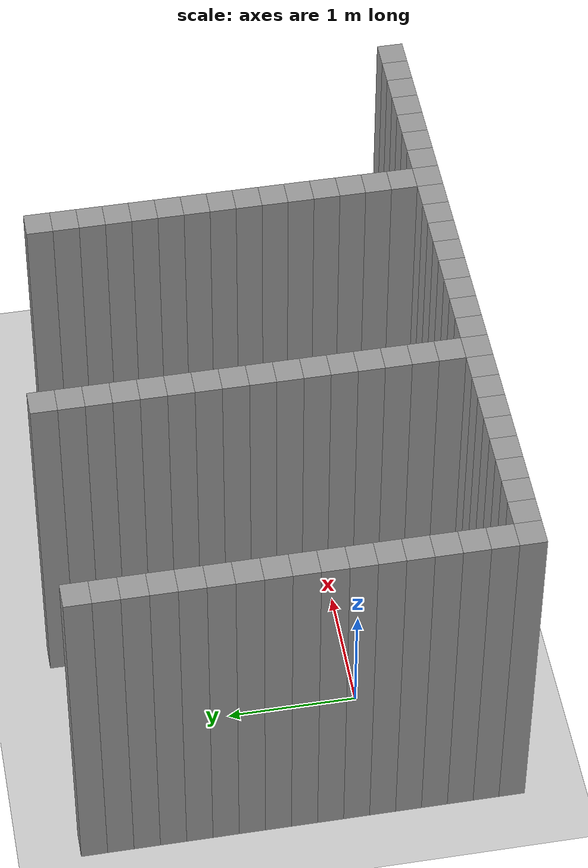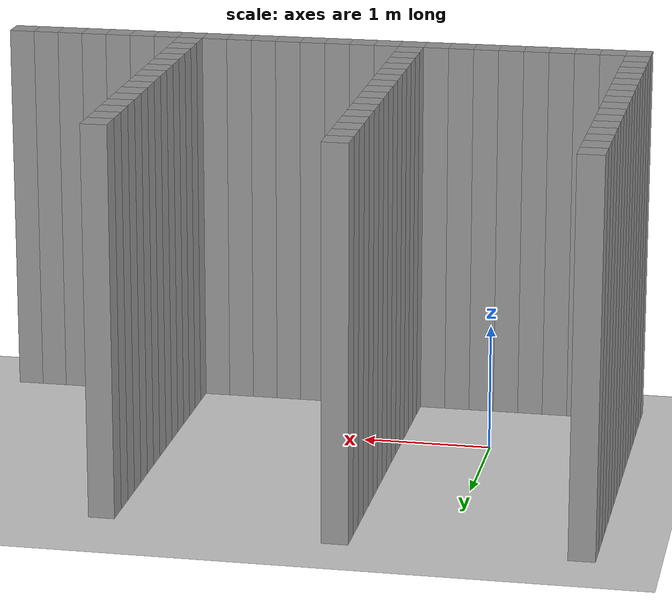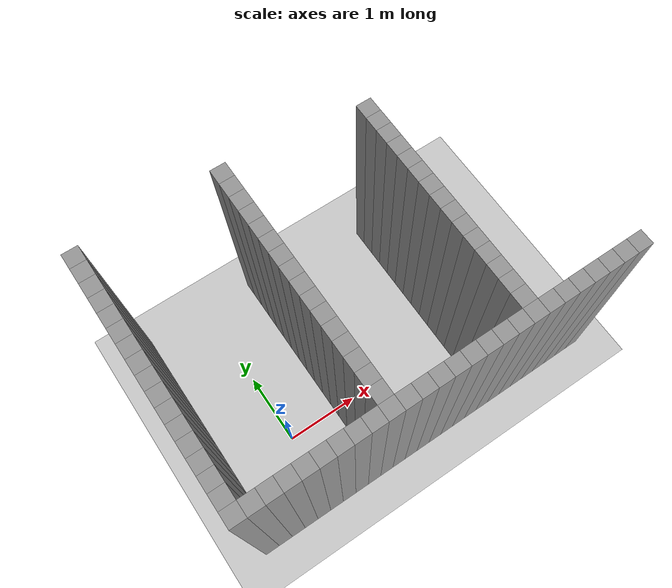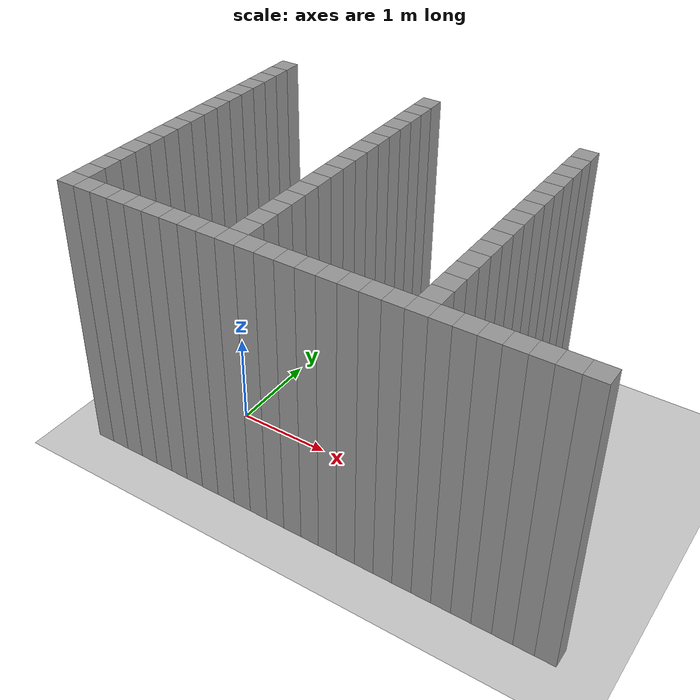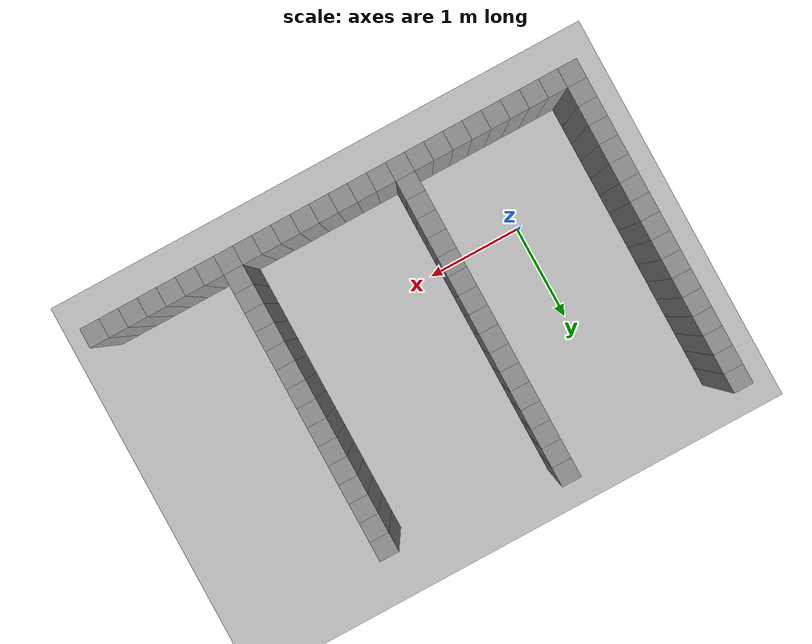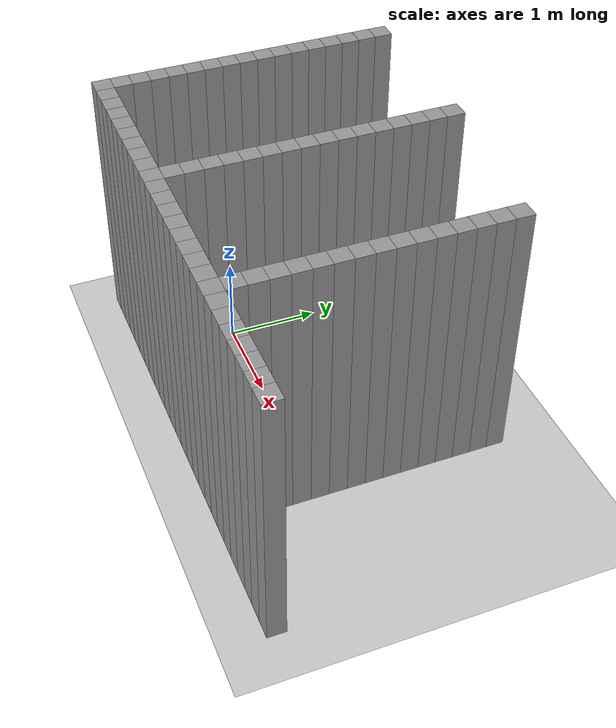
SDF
<sdf version="1.7">
 <world name="default">
  <model name="ground_plane">
   <static>1</static>
   <link name="link">
    <collision name="collision">
     <geometry><plane><normal>0 0 1</normal><size>100 100</size></plane></geometry>
     <surface>
      <contact><collide_bitmask>65535</collide_bitmask></contact>
      <friction><ode><mu>100</mu><mu2>50</mu2></ode></friction>
     </surface>
    </collision>
    <visual name="visual">
     <cast_shadows>0</cast_shadows>
     <geometry><plane><normal>0 0 1</normal><size>100 100</size></plane></geometry>
     <material>
      <script><uri>file://media/materials/scripts/gazebo.material</uri><name>Gazebo/Grey</name></script>
     </material>
    </visual>
   </link>
  </model>
  <model name="image1">
   <pose>-1 -1 0 0 -0 0</pose>
   <link name="Wall_0">
    <collision name="Wall_0_Collision">
     <geometry><box><size>0.2 0.2 3</size></box></geometry>
     <pose>0 0 1.5 0 -0 0</pose>
    </collision>
    <visual name="Wall_0_Visual">
     <pose>0 0 1.5 0 -0 0</pose>
     <geometry><box><size>0.2 0.2 3</size></box></geometry>
     <material>
      <script><uri>file://media/materials/scripts/gazebo.material</uri><name>Gazebo/Grey</name></script>
      <ambient>1 1 1 1</ambient>
     </material>
     <meta><layer>0</layer></meta>
    </visual>
   </link>
   <link name="Wall_1">
    <collision name="Wall_1_Collision">
     <geometry><box><size>0.2 0.2 3</size></box></geometry>
     <pose>0 0 1.5 0 -0 0</pose>
    </collision>
    <visual name="Wall_1_Visual">
     <pose>0 0 1.5 0 -0 0</pose>
     <geometry><box><size>0.2 0.2 3</size></box></geometry>
     <material>
      <script><uri>file://media/materials/scripts/gazebo.material</uri><name>Gazebo/Grey</name></script>
      <ambient>1 1 1 1</ambient>
     </material>
     <meta><layer>0</layer></meta>
    </visual>
    <pose>0.0 0.2 0 0 -0 0</pose>
   </link>
   <link name="Wall_2">
    <collision name="Wall_2_Collision">
     <geometry><box><size>0.2 0.2 3</size></box></geometry>
     <pose>0 0 1.5 0 -0 0</pose>
    </collision>
    <visual name="Wall_2_Visual">
     <pose>0 0 1.5 0 -0 0</pose>
     <geometry><box><size>0.2 0.2 3</size></box></geometry>
     <material>
      <script><uri>file://media/materials/scripts/gazebo.material</uri><name>Gazebo/Grey</name></script>
      <ambient>1 1 1 1</ambient>
     </material>
     <meta><layer>0</layer></meta>
    </visual>
    <pose>0.0 0.4 0 0 -0 0</pose>
   </link>
   <link name="Wall_3">
    <collision name="Wall_3_Collision">
     <geometry><box><size>0.2 0.2 3</size></box></geometry>
     <pose>0 0 1.5 0 -0 0</pose>
    </collision>
    <visual name="Wall_3_Visual">
     <pose>0 0 1.5 0 -0 0</pose>
     <geometry><box><size>0.2 0.2 3</size></box></geometry>
     <material>
      <script><uri>file://media/materials/scripts/gazebo.material</uri><name>Gazebo/Grey</name></script>
      <ambient>1 1 1 1</ambient>
     </material>
     <meta><layer>0</layer></meta>
    </visual>
    <pose>0.0 0.6000000000000001 0 0 -0 0</pose>
   </link>
   <link name="Wall_4">
    <collision name="Wall_4_Collision">
     <geometry><box><size>0.2 0.2 3</size></box></geometry>
     <pose>0 0 1.5 0 -0 0</pose>
    </collision>
    <visual name="Wall_4_Visual">
     <pose>0 0 1.5 0 -0 0</pose>
     <geometry><box><size>0.2 0.2 3</size></box></geometry>
     <material>
      <script><uri>file://media/materials/scripts/gazebo.material</uri><name>Gazebo/Grey</name></script>
      <ambient>1 1 1 1</ambient>
     </material>
     <meta><layer>0</layer></meta>
    </visual>
    <pose>0.0 0.8 0 0 -0 0</pose>
   </link>
   <link name="Wall_5">
    <collision name="Wall_5_Collision">
     <geometry><box><size>0.2 0.2 3</size></box></geometry>
     <pose>0 0 1.5 0 -0 0</pose>
    </collision>
    <visual name="Wall_5_Visual">
     <pose>0 0 1.5 0 -0 0</pose>
     <geometry><box><size>0.2 0.2 3</size></box></geometry>
     <material>
      <script><uri>file://media/materials/scripts/gazebo.material</uri><name>Gazebo/Grey</name></script>
      <ambient>1 1 1 1</ambient>
     </material>
     <meta><layer>0</layer></meta>
    </visual>
    <pose>0.0 1.0 0 0 -0 0</pose>
   </link>
   <link name="Wall_6">
    <collision name="Wall_6_Collision">
     <geometry><box><size>0.2 0.2 3</size></box></geometry>
     <pose>0 0 1.5 0 -0 0</pose>
    </collision>
    <visual name="Wall_6_Visual">
     <pose>0 0 1.5 0 -0 0</pose>
     <geometry><box><size>0.2 0.2 3</size></box></geometry>
     <material>
      <script><uri>file://media/materials/scripts/gazebo.material</uri><name>Gazebo/Grey</name></script>
      <ambient>1 1 1 1</ambient>
     </material>
     <meta><layer>0</layer></meta>
    </visual>
    <pose>0.0 1.2000000000000002 0 0 -0 0</pose>
   </link>
   <link name="Wall_7">
    <collision name="Wall_7_Collision">
     <geometry><box><size>0.2 0.2 3</size></box></geometry>
     <pose>0 0 1.5 0 -0 0</pose>
    </collision>
    <visual name="Wall_7_Visual">
     <pose>0 0 1.5 0 -0 0</pose>
     <geometry><box><size>0.2 0.2 3</size></box></geometry>
     <material>
      <script><uri>file://media/materials/scripts/gazebo.material</uri><name>Gazebo/Grey</name></script>
      <ambient>1 1 1 1</ambient>
     </material>
     <meta><layer>0</layer></meta>
    </visual>
    <pose>0.0 1.4000000000000001 0 0 -0 0</pose>
   </link>
   <link name="Wall_8">
    <collision name="Wall_8_Collision">
     <geometry><box><size>0.2 0.2 3</size></box></geometry>
     <pose>0 0 1.5 0 -0 0</pose>
    </collision>
    <visual name="Wall_8_Visual">
     <pose>0 0 1.5 0 -0 0</pose>
     <geometry><box><size>0.2 0.2 3</size></box></geometry>
     <material>
      <script><uri>file://media/materials/scripts/gazebo.material</uri><name>Gazebo/Grey</name></script>
      <ambient>1 1 1 1</ambient>
     </material>
     <meta><layer>0</layer></meta>
    </visual>
    <pose>0.0 1.6 0 0 -0 0</pose>
   </link>
   <link name="Wall_9">
    <collision name="Wall_9_Collision">
     <geometry><box><size>0.2 0.2 3</size></box></geometry>
     <pose>0 0 1.5 0 -0 0</pose>
    </collision>
    <visual name="Wall_9_Visual">
     <pose>0 0 1.5 0 -0 0</pose>
     <geometry><box><size>0.2 0.2 3</size></box></geometry>
     <material>
      <script><uri>file://media/materials/scripts/gazebo.material</uri><name>Gazebo/Grey</name></script>
      <ambient>1 1 1 1</ambient>
     </material>
     <meta><layer>0</layer></meta>
    </visual>
    <pose>0.0 1.8 0 0 -0 0</pose>
   </link>
   <link name="Wall_10">
    <collision name="Wall_10_Collision">
     <geometry><box><size>0.2 0.2 3</size></box></geometry>
     <pose>0 0 1.5 0 -0 0</pose>
    </collision>
    <visual name="Wall_10_Visual">
     <pose>0 0 1.5 0 -0 0</pose>
     <geometry><box><size>0.2 0.2 3</size></box></geometry>
     <material>
      <script><uri>file://media/materials/scripts/gazebo.material</uri><name>Gazebo/Grey</name></script>
      <ambient>1 1 1 1</ambient>
     </material>
     <meta><layer>0</layer></meta>
    </visual>
    <pose>0.0 2.0 0 0 -0 0</pose>
   </link>
   <link name="Wall_11">
    <collision name="Wall_11_Collision">
     <geometry><box><size>0.2 0.2 3</size></box></geometry>
     <pose>0 0 1.5 0 -0 0</pose>
    </collision>
    <visual name="Wall_11_Visual">
     <pose>0 0 1.5 0 -0 0</pose>
     <geometry><box><size>0.2 0.2 3</size></box></geometry>
     <material>
      <script><uri>file://media/materials/scripts/gazebo.material</uri><name>Gazebo/Grey</name></script>
      <ambient>1 1 1 1</ambient>
     </material>
     <meta><layer>0</layer></meta>
    </visual>
    <pose>0.0 2.2 0 0 -0 0</pose>
   </link>
   <link name="Wall_12">
    <collision name="Wall_12_Collision">
     <geometry><box><size>0.2 0.2 3</size></box></geometry>
     <pose>0 0 1.5 0 -0 0</pose>
    </collision>
    <visual name="Wall_12_Visual">
     <pose>0 0 1.5 0 -0 0</pose>
     <geometry><box><size>0.2 0.2 3</size></box></geometry>
     <material>
      <script><uri>file://media/materials/scripts/gazebo.material</uri><name>Gazebo/Grey</name></script>
      <ambient>1 1 1 1</ambient>
     </material>
     <meta><layer>0</layer></meta>
    </visual>
    <pose>0.0 2.4000000000000004 0 0 -0 0</pose>
   </link>
   <link name="Wall_13">
    <collision name="Wall_13_Collision">
     <geometry><box><size>0.2 0.2 3</size></box></geometry>
     <pose>0 0 1.5 0 -0 0</pose>
    </collision>
    <visual name="Wall_13_Visual">
     <pose>0 0 1.5 0 -0 0</pose>
     <geometry><box><size>0.2 0.2 3</size></box></geometry>
     <material>
      <script><uri>file://media/materials/scripts/gazebo.material</uri><name>Gazebo/Grey</name></script>
      <ambient>1 1 1 1</ambient>
     </material>
     <meta><layer>0</layer></meta>
    </visual>
    <pose>0.0 2.6 0 0 -0 0</pose>
   </link>
   <link name="Wall_14">
    <collision name="Wall_14_Collision">
     <geometry><box><size>0.2 0.2 3</size></box></geometry>
     <pose>0 0 1.5 0 -0 0</pose>
    </collision>
    <visual name="Wall_14_Visual">
     <pose>0 0 1.5 0 -0 0</pose>
     <geometry><box><size>0.2 0.2 3</size></box></geometry>
     <material>
      <script><uri>file://media/materials/scripts/gazebo.material</uri><name>Gazebo/Grey</name></script>
      <ambient>1 1 1 1</ambient>
     </material>
     <meta><layer>0</layer></meta>
    </visual>
    <pose>0.0 2.8000000000000003 0 0 -0 0</pose>
   </link>
   <link name="Wall_15">
    <collision name="Wall_15_Collision">
     <geometry><box><size>0.2 0.2 3</size></box></geometry>
     <pose>0 0 1.5 0 -0 0</pose>
    </collision>
    <visual name="Wall_15_Visual">
     <pose>0 0 1.5 0 -0 0</pose>
     <geometry><box><size>0.2 0.2 3</size></box></geometry>
     <material>
      <script><uri>file://media/materials/scripts/gazebo.material</uri><name>Gazebo/Grey</name></script>
      <ambient>1 1 1 1</ambient>
     </material>
     <meta><layer>0</layer></meta>
    </visual>
    <pose>0.0 3.0 0 0 -0 0</pose>
   </link>
   <link name="Wall_16">
    <collision name="Wall_16_Collision">
     <geometry><box><size>0.2 0.2 3</size></box></geometry>
     <pose>0 0 1.5 0 -0 0</pose>
    </collision>
    <visual name="Wall_16_Visual">
     <pose>0 0 1.5 0 -0 0</pose>
     <geometry><box><size>0.2 0.2 3</size></box></geometry>
     <material>
      <script><uri>file://media/materials/scripts/gazebo.material</uri><name>Gazebo/Grey</name></script>
      <ambient>1 1 1 1</ambient>
     </material>
     <meta><layer>0</layer></meta>
    </visual>
    <pose>0.0 3.2 0 0 -0 0</pose>
   </link>
   <link name="Wall_60">
    <collision name="Wall_60_Collision">
     <geometry><box><size>0.2 0.2 3</size></box></geometry>
     <pose>0 0 1.5 0 -0 0</pose>
    </collision>
    <visual name="Wall_60_Visual">
     <pose>0 0 1.5 0 -0 0</pose>
     <geometry><box><size>0.2 0.2 3</size></box></geometry>
     <material>
      <script><uri>file://media/materials/scripts/gazebo.material</uri><name>Gazebo/Grey</name></script>
      <ambient>1 1 1 1</ambient>
     </material>
     <meta><layer>0</layer></meta>
    </visual>
    <pose>0.2 0.0 0 0 -0 0</pose>
   </link>
   <link name="Wall_65">
    <collision name="Wall_65_Collision">
     <geometry><box><size>0.2 0.2 3</size></box></geometry>
     <pose>0 0 1.5 0 -0 0</pose>
    </collision>
    <visual name="Wall_65_Visual">
     <pose>0 0 1.5 0 -0 0</pose>
     <geometry><box><size>0.2 0.2 3</size></box></geometry>
     <material>
      <script><uri>file://media/materials/scripts/gazebo.material</uri><name>Gazebo/Grey</name></script>
      <ambient>1 1 1 1</ambient>
     </material>
     <meta><layer>0</layer></meta>
    </visual>
    <pose>0.4 0.0 0 0 -0 0</pose>
   </link>
   <link name="Wall_70">
    <collision name="Wall_70_Collision">
     <geometry><box><size>0.2 0.2 3</size></box></geometry>
     <pose>0 0 1.5 0 -0 0</pose>
    </collision>
    <visual name="Wall_70_Visual">
     <pose>0 0 1.5 0 -0 0</pose>
     <geometry><box><size>0.2 0.2 3</size></box></geometry>
     <material>
      <script><uri>file://media/materials/scripts/gazebo.material</uri><name>Gazebo/Grey</name></script>
      <ambient>1 1 1 1</ambient>
     </material>
     <meta><layer>0</layer></meta>
    </visual>
    <pose>0.6000000000000001 0.0 0 0 -0 0</pose>
   </link>
   <link name="Wall_75">
    <collision name="Wall_75_Collision">
     <geometry><box><size>0.2 0.2 3</size></box></geometry>
     <pose>0 0 1.5 0 -0 0</pose>
    </collision>
    <visual name="Wall_75_Visual">
     <pose>0 0 1.5 0 -0 0</pose>
     <geometry><box><size>0.2 0.2 3</size></box></geometry>
     <material>
      <script><uri>file://media/materials/scripts/gazebo.material</uri><name>Gazebo/Grey</name></script>
      <ambient>1 1 1 1</ambient>
     </material>
     <meta><layer>0</layer></meta>
    </visual>
    <pose>0.8 0.0 0 0 -0 0</pose>
   </link>
   <link name="Wall_79">
    <collision name="Wall_79_Collision">
     <geometry><box><size>0.2 0.2 3</size></box></geometry>
     <pose>0 0 1.5 0 -0 0</pose>
    </collision>
    <visual name="Wall_79_Visual">
     <pose>0 0 1.5 0 -0 0</pose>
     <geometry><box><size>0.2 0.2 3</size></box></geometry>
     <material>
      <script><uri>file://media/materials/scripts/gazebo.material</uri><name>Gazebo/Grey</name></script>
      <ambient>1 1 1 1</ambient>
     </material>
     <meta><layer>0</layer></meta>
    </visual>
    <pose>1.0 0.0 0 0 -0 0</pose>
   </link>
   <link name="Wall_83">
    <collision name="Wall_83_Collision">
     <geometry><box><size>0.2 0.2 3</size></box></geometry>
     <pose>0 0 1.5 0 -0 0</pose>
    </collision>
    <visual name="Wall_83_Visual">
     <pose>0 0 1.5 0 -0 0</pose>
     <geometry><box><size>0.2 0.2 3</size></box></geometry>
     <material>
      <script><uri>file://media/materials/scripts/gazebo.material</uri><name>Gazebo/Grey</name></script>
      <ambient>1 1 1 1</ambient>
     </material>
     <meta><layer>0</layer></meta>
    </visual>
    <pose>1.2000000000000002 0.0 0 0 -0 0</pose>
   </link>
   <link name="Wall_87">
    <collision name="Wall_87_Collision">
     <geometry><box><size>0.2 0.2 3</size></box></geometry>
     <pose>0 0 1.5 0 -0 0</pose>
    </collision>
    <visual name="Wall_87_Visual">
     <pose>0 0 1.5 0 -0 0</pose>
     <geometry><box><size>0.2 0.2 3</size></box></geometry>
     <material>
      <script><uri>file://media/materials/scripts/gazebo.material</uri><name>Gazebo/Grey</name></script>
      <ambient>1 1 1 1</ambient>
     </material>
     <meta><layer>0</layer></meta>
    </visual>
    <pose>1.4000000000000001 0.0 0 0 -0 0</pose>
   </link>
   <link name="Wall_91">
    <collision name="Wall_91_Collision">
     <geometry><box><size>0.2 0.2 3</size></box></geometry>
     <pose>0 0 1.5 0 -0 0</pose>
    </collision>
    <visual name="Wall_91_Visual">
     <pose>0 0 1.5 0 -0 0</pose>
     <geometry><box><size>0.2 0.2 3</size></box></geometry>
     <material>
      <script><uri>file://media/materials/scripts/gazebo.material</uri><name>Gazebo/Grey</name></script>
      <ambient>1 1 1 1</ambient>
     </material>
     <meta><layer>0</layer></meta>
    </visual>
    <pose>1.6 0.0 0 0 -0 0</pose>
   </link>
   <link name="Wall_95">
    <collision name="Wall_95_Collision">
     <geometry><box><size>0.2 0.2 3</size></box></geometry>
     <pose>0 0 1.5 0 -0 0</pose>
    </collision>
    <visual name="Wall_95_Visual">
     <pose>0 0 1.5 0 -0 0</pose>
     <geometry><box><size>0.2 0.2 3</size></box></geometry>
     <material>
      <script><uri>file://media/materials/scripts/gazebo.material</uri><name>Gazebo/Grey</name></script>
      <ambient>1 1 1 1</ambient>
     </material>
     <meta><layer>0</layer></meta>
    </visual>
    <pose>1.8 0.0 0 0 -0 0</pose>
   </link>
   <link name="Wall_96">
    <collision name="Wall_96_Collision">
     <geometry><box><size>0.2 0.2 3</size></box></geometry>
     <pose>0 0 1.5 0 -0 0</pose>
    </collision>
    <visual name="Wall_96_Visual">
     <pose>0 0 1.5 0 -0 0</pose>
     <geometry><box><size>0.2 0.2 3</size></box></geometry>
     <material>
      <script><uri>file://media/materials/scripts/gazebo.material</uri><name>Gazebo/Grey</name></script>
      <ambient>1 1 1 1</ambient>
     </material>
     <meta><layer>0</layer></meta>
    </visual>
    <pose>1.8 0.2 0 0 -0 0</pose>
   </link>
   <link name="Wall_97">
    <collision name="Wall_97_Collision">
     <geometry><box><size>0.2 0.2 3</size></box></geometry>
     <pose>0 0 1.5 0 -0 0</pose>
    </collision>
    <visual name="Wall_97_Visual">
     <pose>0 0 1.5 0 -0 0</pose>
     <geometry><box><size>0.2 0.2 3</size></box></geometry>
     <material>
      <script><uri>file://media/materials/scripts/gazebo.material</uri><name>Gazebo/Grey</name></script>
      <ambient>1 1 1 1</ambient>
     </material>
     <meta><layer>0</layer></meta>
    </visual>
    <pose>1.8 0.4 0 0 -0 0</pose>
   </link>
   <link name="Wall_98">
    <collision name="Wall_98_Collision">
     <geometry><box><size>0.2 0.2 3</size></box></geometry>
     <pose>0 0 1.5 0 -0 0</pose>
    </collision>
    <visual name="Wall_98_Visual">
     <pose>0 0 1.5 0 -0 0</pose>
     <geometry><box><size>0.2 0.2 3</size></box></geometry>
     <material>
      <script><uri>file://media/materials/scripts/gazebo.material</uri><name>Gazebo/Grey</name></script>
      <ambient>1 1 1 1</ambient>
     </material>
     <meta><layer>0</layer></meta>
    </visual>
    <pose>1.8 0.6000000000000001 0 0 -0 0</pose>
   </link>
   <link name="Wall_99">
    <collision name="Wall_99_Collision">
     <geometry><box><size>0.2 0.2 3</size></box></geometry>
     <pose>0 0 1.5 0 -0 0</pose>
    </collision>
    <visual name="Wall_99_Visual">
     <pose>0 0 1.5 0 -0 0</pose>
     <geometry><box><size>0.2 0.2 3</size></box></geometry>
     <material>
      <script><uri>file://media/materials/scripts/gazebo.material</uri><name>Gazebo/Grey</name></script>
      <ambient>1 1 1 1</ambient>
     </material>
     <meta><layer>0</layer></meta>
    </visual>
    <pose>1.8 0.8 0 0 -0 0</pose>
   </link>
   <link name="Wall_100">
    <collision name="Wall_100_Collision">
     <geometry><box><size>0.2 0.2 3</size></box></geometry>
     <pose>0 0 1.5 0 -0 0</pose>
    </collision>
    <visual name="Wall_100_Visual">
     <pose>0 0 1.5 0 -0 0</pose>
     <geometry><box><size>0.2 0.2 3</size></box></geometry>
     <material>
      <script><uri>file://media/materials/scripts/gazebo.material</uri><name>Gazebo/Grey</name></script>
      <ambient>1 1 1 1</ambient>
     </material>
     <meta><layer>0</layer></meta>
    </visual>
    <pose>1.8 1.0 0 0 -0 0</pose>
   </link>
   <link name="Wall_101">
    <collision name="Wall_101_Collision">
     <geometry><box><size>0.2 0.2 3</size></box></geometry>
     <pose>0 0 1.5 0 -0 0</pose>
    </collision>
    <visual name="Wall_101_Visual">
     <pose>0 0 1.5 0 -0 0</pose>
     <geometry><box><size>0.2 0.2 3</size></box></geometry>
     <material>
      <script><uri>file://media/materials/scripts/gazebo.material</uri><name>Gazebo/Grey</name></script>
      <ambient>1 1 1 1</ambient>
     </material>
     <meta><layer>0</layer></meta>
    </visual>
    <pose>1.8 1.2000000000000002 0 0 -0 0</pose>
   </link>
   <link name="Wall_102">
    <collision name="Wall_102_Collision">
     <geometry><box><size>0.2 0.2 3</size></box></geometry>
     <pose>0 0 1.5 0 -0 0</pose>
    </collision>
    <visual name="Wall_102_Visual">
     <pose>0 0 1.5 0 -0 0</pose>
     <geometry><box><size>0.2 0.2 3</size></box></geometry>
     <material>
      <script><uri>file://media/materials/scripts/gazebo.material</uri><name>Gazebo/Grey</name></script>
      <ambient>1 1 1 1</ambient>
     </material>
     <meta><layer>0</layer></meta>
    </visual>
    <pose>1.8 1.4000000000000001 0 0 -0 0</pose>
   </link>
   <link name="Wall_103">
    <collision name="Wall_103_Collision">
     <geometry><box><size>0.2 0.2 3</size></box></geometry>
     <pose>0 0 1.5 0 -0 0</pose>
    </collision>
    <visual name="Wall_103_Visual">
     <pose>0 0 1.5 0 -0 0</pose>
     <geometry><box><size>0.2 0.2 3</size></box></geometry>
     <material>
      <script><uri>file://media/materials/scripts/gazebo.material</uri><name>Gazebo/Grey</name></script>
      <ambient>1 1 1 1</ambient>
     </material>
     <meta><layer>0</layer></meta>
    </visual>
    <pose>1.8 1.6 0 0 -0 0</pose>
   </link>
   <link name="Wall_104">
    <collision name="Wall_104_Collision">
     <geometry><box><size>0.2 0.2 3</size></box></geometry>
     <pose>0 0 1.5 0 -0 0</pose>
    </collision>
    <visual name="Wall_104_Visual">
     <pose>0 0 1.5 0 -0 0</pose>
     <geometry><box><size>0.2 0.2 3</size></box></geometry>
     <material>
      <script><uri>file://media/materials/scripts/gazebo.material</uri><name>Gazebo/Grey</name></script>
      <ambient>1 1 1 1</ambient>
     </material>
     <meta><layer>0</layer></meta>
    </visual>
    <pose>1.8 1.8 0 0 -0 0</pose>
   </link>
   <link name="Wall_105">
    <collision name="Wall_105_Collision">
     <geometry><box><size>0.2 0.2 3</size></box></geometry>
     <pose>0 0 1.5 0 -0 0</pose>
    </collision>
    <visual name="Wall_105_Visual">
     <pose>0 0 1.5 0 -0 0</pose>
     <geometry><box><size>0.2 0.2 3</size></box></geometry>
     <material>
      <script><uri>file://media/materials/scripts/gazebo.material</uri><name>Gazebo/Grey</name></script>
      <ambient>1 1 1 1</ambient>
     </material>
     <meta><layer>0</layer></meta>
    </visual>
    <pose>1.8 2.0 0 0 -0 0</pose>
   </link>
   <link name="Wall_106">
    <collision name="Wall_106_Collision">
     <geometry><box><size>0.2 0.2 3</size></box></geometry>
     <pose>0 0 1.5 0 -0 0</pose>
    </collision>
    <visual name="Wall_106_Visual">
     <pose>0 0 1.5 0 -0 0</pose>
     <geometry><box><size>0.2 0.2 3</size></box></geometry>
     <material>
      <script><uri>file://media/materials/scripts/gazebo.material</uri><name>Gazebo/Grey</name></script>
      <ambient>1 1 1 1</ambient>
     </material>
     <meta><layer>0</layer></meta>
    </visual>
    <pose>1.8 2.2 0 0 -0 0</pose>
   </link>
   <link name="Wall_107">
    <collision name="Wall_107_Collision">
     <geometry><box><size>0.2 0.2 3</size></box></geometry>
     <pose>0 0 1.5 0 -0 0</pose>
    </collision>
    <visual name="Wall_107_Visual">
     <pose>0 0 1.5 0 -0 0</pose>
     <geometry><box><size>0.2 0.2 3</size></box></geometry>
     <material>
      <script><uri>file://media/materials/scripts/gazebo.material</uri><name>Gazebo/Grey</name></script>
      <ambient>1 1 1 1</ambient>
     </material>
     <meta><layer>0</layer></meta>
    </visual>
    <pose>1.8 2.4000000000000004 0 0 -0 0</pose>
   </link>
   <link name="Wall_108">
    <collision name="Wall_108_Collision">
     <geometry><box><size>0.2 0.2 3</size></box></geometry>
     <pose>0 0 1.5 0 -0 0</pose>
    </collision>
    <visual name="Wall_108_Visual">
     <pose>0 0 1.5 0 -0 0</pose>
     <geometry><box><size>0.2 0.2 3</size></box></geometry>
     <material>
      <script><uri>file://media/materials/scripts/gazebo.material</uri><name>Gazebo/Grey</name></script>
      <ambient>1 1 1 1</ambient>
     </material>
     <meta><layer>0</layer></meta>
    </visual>
    <pose>1.8 2.6 0 0 -0 0</pose>
   </link>
   <link name="Wall_109">
    <collision name="Wall_109_Collision">
     <geometry><box><size>0.2 0.2 3</size></box></geometry>
     <pose>0 0 1.5 0 -0 0</pose>
    </collision>
    <visual name="Wall_109_Visual">
     <pose>0 0 1.5 0 -0 0</pose>
     <geometry><box><size>0.2 0.2 3</size></box></geometry>
     <material>
      <script><uri>file://media/materials/scripts/gazebo.material</uri><name>Gazebo/Grey</name></script>
      <ambient>1 1 1 1</ambient>
     </material>
     <meta><layer>0</layer></meta>
    </visual>
    <pose>1.8 2.8000000000000003 0 0 -0 0</pose>
   </link>
   <link name="Wall_110">
    <collision name="Wall_110_Collision">
     <geometry><box><size>0.2 0.2 3</size></box></geometry>
     <pose>0 0 1.5 0 -0 0</pose>
    </collision>
    <visual name="Wall_110_Visual">
     <pose>0 0 1.5 0 -0 0</pose>
     <geometry><box><size>0.2 0.2 3</size></box></geometry>
     <material>
      <script><uri>file://media/materials/scripts/gazebo.material</uri><name>Gazebo/Grey</name></script>
      <ambient>1 1 1 1</ambient>
     </material>
     <meta><layer>0</layer></meta>
    </visual>
    <pose>1.8 3.0 0 0 -0 0</pose>
   </link>
   <link name="Wall_111">
    <collision name="Wall_111_Collision">
     <geometry><box><size>0.2 0.2 3</size></box></geometry>
     <pose>0 0 1.5 0 -0 0</pose>
    </collision>
    <visual name="Wall_111_Visual">
     <pose>0 0 1.5 0 -0 0</pose>
     <geometry><box><size>0.2 0.2 3</size></box></geometry>
     <material>
      <script><uri>file://media/materials/scripts/gazebo.material</uri><name>Gazebo/Grey</name></script>
      <ambient>1 1 1 1</ambient>
     </material>
     <meta><layer>0</layer></meta>
    </visual>
    <pose>1.8 3.2 0 0 -0 0</pose>
   </link>
   <link name="Wall_117">
    <collision name="Wall_117_Collision">
     <geometry><box><size>0.2 0.2 3</size></box></geometry>
     <pose>0 0 1.5 0 -0 0</pose>
    </collision>
    <visual name="Wall_117_Visual">
     <pose>0 0 1.5 0 -0 0</pose>
     <geometry><box><size>0.2 0.2 3</size></box></geometry>
     <material>
      <script><uri>file://media/materials/scripts/gazebo.material</uri><name>Gazebo/Grey</name></script>
      <ambient>1 1 1 1</ambient>
     </material>
     <meta><layer>0</layer></meta>
    </visual>
    <pose>2.0 0.0 0 0 -0 0</pose>
   </link>
   <link name="Wall_122">
    <collision name="Wall_122_Collision">
     <geometry><box><size>0.2 0.2 3</size></box></geometry>
     <pose>0 0 1.5 0 -0 0</pose>
    </collision>
    <visual name="Wall_122_Visual">
     <pose>0 0 1.5 0 -0 0</pose>
     <geometry><box><size>0.2 0.2 3</size></box></geometry>
     <material>
      <script><uri>file://media/materials/scripts/gazebo.material</uri><name>Gazebo/Grey</name></script>
      <ambient>1 1 1 1</ambient>
     </material>
     <meta><layer>0</layer></meta>
    </visual>
    <pose>2.2 0.0 0 0 -0 0</pose>
   </link>
   <link name="Wall_127">
    <collision name="Wall_127_Collision">
     <geometry><box><size>0.2 0.2 3</size></box></geometry>
     <pose>0 0 1.5 0 -0 0</pose>
    </collision>
    <visual name="Wall_127_Visual">
     <pose>0 0 1.5 0 -0 0</pose>
     <geometry><box><size>0.2 0.2 3</size></box></geometry>
     <material>
      <script><uri>file://media/materials/scripts/gazebo.material</uri><name>Gazebo/Grey</name></script>
      <ambient>1 1 1 1</ambient>
     </material>
     <meta><layer>0</layer></meta>
    </visual>
    <pose>2.4000000000000004 0.0 0 0 -0 0</pose>
   </link>
   <link name="Wall_132">
    <collision name="Wall_132_Collision">
     <geometry><box><size>0.2 0.2 3</size></box></geometry>
     <pose>0 0 1.5 0 -0 0</pose>
    </collision>
    <visual name="Wall_132_Visual">
     <pose>0 0 1.5 0 -0 0</pose>
     <geometry><box><size>0.2 0.2 3</size></box></geometry>
     <material>
      <script><uri>file://media/materials/scripts/gazebo.material</uri><name>Gazebo/Grey</name></script>
      <ambient>1 1 1 1</ambient>
     </material>
     <meta><layer>0</layer></meta>
    </visual>
    <pose>2.6 0.0 0 0 -0 0</pose>
   </link>
   <link name="Wall_151">
    <collision name="Wall_151_Collision">
     <geometry><box><size>0.2 0.2 3</size></box></geometry>
     <pose>0 0 1.5 0 -0 0</pose>
    </collision>
    <visual name="Wall_151_Visual">
     <pose>0 0 1.5 0 -0 0</pose>
     <geometry><box><size>0.2 0.2 3</size></box></geometry>
     <material>
      <script><uri>file://media/materials/scripts/gazebo.material</uri><name>Gazebo/Grey</name></script>
      <ambient>1 1 1 1</ambient>
     </material>
     <meta><layer>0</layer></meta>
    </visual>
    <pose>2.8000000000000003 0.0 0 0 -0 0</pose>
   </link>
   <link name="Wall_156">
    <collision name="Wall_156_Collision">
     <geometry><box><size>0.2 0.2 3</size></box></geometry>
     <pose>0 0 1.5 0 -0 0</pose>
    </collision>
    <visual name="Wall_156_Visual">
     <pose>0 0 1.5 0 -0 0</pose>
     <geometry><box><size>0.2 0.2 3</size></box></geometry>
     <material>
      <script><uri>file://media/materials/scripts/gazebo.material</uri><name>Gazebo/Grey</name></script>
      <ambient>1 1 1 1</ambient>
     </material>
     <meta><layer>0</layer></meta>
    </visual>
    <pose>3.0 0.0 0 0 -0 0</pose>
   </link>
   <link name="Wall_162">
    <collision name="Wall_162_Collision">
     <geometry><box><size>0.2 0.2 3</size></box></geometry>
     <pose>0 0 1.5 0 -0 0</pose>
    </collision>
    <visual name="Wall_162_Visual">
     <pose>0 0 1.5 0 -0 0</pose>
     <geometry><box><size>0.2 0.2 3</size></box></geometry>
     <material>
      <script><uri>file://media/materials/scripts/gazebo.material</uri><name>Gazebo/Grey</name></script>
      <ambient>1 1 1 1</ambient>
     </material>
     <meta><layer>0</layer></meta>
    </visual>
    <pose>3.2 0.0 0 0 -0 0</pose>
   </link>
   <link name="Wall_164">
    <collision name="Wall_164_Collision">
     <geometry><box><size>0.2 0.2 3</size></box></geometry>
     <pose>0 0 1.5 0 -0 0</pose>
    </collision>
    <visual name="Wall_164_Visual">
     <pose>0 0 1.5 0 -0 0</pose>
     <geometry><box><size>0.2 0.2 3</size></box></geometry>
     <material>
      <script><uri>file://media/materials/scripts/gazebo.material</uri><name>Gazebo/Grey</name></script>
      <ambient>1 1 1 1</ambient>
     </material>
     <meta><layer>0</layer></meta>
    </visual>
    <pose>3.4000000000000004 0.0 0 0 -0 0</pose>
   </link>
   <link name="Wall_166">
    <collision name="Wall_166_Collision">
     <geometry><box><size>0.2 0.2 3</size></box></geometry>
     <pose>0 0 1.5 0 -0 0</pose>
    </collision>
    <visual name="Wall_166_Visual">
     <pose>0 0 1.5 0 -0 0</pose>
     <geometry><box><size>0.2 0.2 3</size></box></geometry>
     <material>
      <script><uri>file://media/materials/scripts/gazebo.material</uri><name>Gazebo/Grey</name></script>
      <ambient>1 1 1 1</ambient>
     </material>
     <meta><layer>0</layer></meta>
    </visual>
    <pose>3.6 0.0 0 0 -0 0</pose>
   </link>
   <link name="Wall_167">
    <collision name="Wall_167_Collision">
     <geometry><box><size>0.2 0.2 3</size></box></geometry>
     <pose>0 0 1.5 0 -0 0</pose>
    </collision>
    <visual name="Wall_167_Visual">
     <pose>0 0 1.5 0 -0 0</pose>
     <geometry><box><size>0.2 0.2 3</size></box></geometry>
     <material>
      <script><uri>file://media/materials/scripts/gazebo.material</uri><name>Gazebo/Grey</name></script>
      <ambient>1 1 1 1</ambient>
     </material>
     <meta><layer>0</layer></meta>
    </visual>
    <pose>3.6 0.2 0 0 -0 0</pose>
   </link>
   <link name="Wall_168">
    <collision name="Wall_168_Collision">
     <geometry><box><size>0.2 0.2 3</size></box></geometry>
     <pose>0 0 1.5 0 -0 0</pose>
    </collision>
    <visual name="Wall_168_Visual">
     <pose>0 0 1.5 0 -0 0</pose>
     <geometry><box><size>0.2 0.2 3</size></box></geometry>
     <material>
      <script><uri>file://media/materials/scripts/gazebo.material</uri><name>Gazebo/Grey</name></script>
      <ambient>1 1 1 1</ambient>
     </material>
     <meta><layer>0</layer></meta>
    </visual>
    <pose>3.6 0.4 0 0 -0 0</pose>
   </link>
   <link name="Wall_169">
    <collision name="Wall_169_Collision">
     <geometry><box><size>0.2 0.2 3</size></box></geometry>
     <pose>0 0 1.5 0 -0 0</pose>
    </collision>
    <visual name="Wall_169_Visual">
     <pose>0 0 1.5 0 -0 0</pose>
     <geometry><box><size>0.2 0.2 3</size></box></geometry>
     <material>
      <script><uri>file://media/materials/scripts/gazebo.material</uri><name>Gazebo/Grey</name></script>
      <ambient>1 1 1 1</ambient>
     </material>
     <meta><layer>0</layer></meta>
    </visual>
    <pose>3.6 0.6000000000000001 0 0 -0 0</pose>
   </link>
   <link name="Wall_170">
    <collision name="Wall_170_Collision">
     <geometry><box><size>0.2 0.2 3</size></box></geometry>
     <pose>0 0 1.5 0 -0 0</pose>
    </collision>
    <visual name="Wall_170_Visual">
     <pose>0 0 1.5 0 -0 0</pose>
     <geometry><box><size>0.2 0.2 3</size></box></geometry>
     <material>
      <script><uri>file://media/materials/scripts/gazebo.material</uri><name>Gazebo/Grey</name></script>
      <ambient>1 1 1 1</ambient>
     </material>
     <meta><layer>0</layer></meta>
    </visual>
    <pose>3.6 0.8 0 0 -0 0</pose>
   </link>
   <link name="Wall_171">
    <collision name="Wall_171_Collision">
     <geometry><box><size>0.2 0.2 3</size></box></geometry>
     <pose>0 0 1.5 0 -0 0</pose>
    </collision>
    <visual name="Wall_171_Visual">
     <pose>0 0 1.5 0 -0 0</pose>
     <geometry><box><size>0.2 0.2 3</size></box></geometry>
     <material>
      <script><uri>file://media/materials/scripts/gazebo.material</uri><name>Gazebo/Grey</name></script>
      <ambient>1 1 1 1</ambient>
     </material>
     <meta><layer>0</layer></meta>
    </visual>
    <pose>3.6 1.0 0 0 -0 0</pose>
   </link>
   <link name="Wall_172">
    <collision name="Wall_172_Collision">
     <geometry><box><size>0.2 0.2 3</size></box></geometry>
     <pose>0 0 1.5 0 -0 0</pose>
    </collision>
    <visual name="Wall_172_Visual">
     <pose>0 0 1.5 0 -0 0</pose>
     <geometry><box><size>0.2 0.2 3</size></box></geometry>
     <material>
      <script><uri>file://media/materials/scripts/gazebo.material</uri><name>Gazebo/Grey</name></script>
      <ambient>1 1 1 1</ambient>
     </material>
     <meta><layer>0</layer></meta>
    </visual>
    <pose>3.6 1.2000000000000002 0 0 -0 0</pose>
   </link>
   <link name="Wall_173">
    <collision name="Wall_173_Collision">
     <geometry><box><size>0.2 0.2 3</size></box></geometry>
     <pose>0 0 1.5 0 -0 0</pose>
    </collision>
    <visual name="Wall_173_Visual">
     <pose>0 0 1.5 0 -0 0</pose>
     <geometry><box><size>0.2 0.2 3</size></box></geometry>
     <material>
      <script><uri>file://media/materials/scripts/gazebo.material</uri><name>Gazebo/Grey</name></script>
      <ambient>1 1 1 1</ambient>
     </material>
     <meta><layer>0</layer></meta>
    </visual>
    <pose>3.6 1.4000000000000001 0 0 -0 0</pose>
   </link>
   <link name="Wall_174">
    <collision name="Wall_174_Collision">
     <geometry><box><size>0.2 0.2 3</size></box></geometry>
     <pose>0 0 1.5 0 -0 0</pose>
    </collision>
    <visual name="Wall_174_Visual">
     <pose>0 0 1.5 0 -0 0</pose>
     <geometry><box><size>0.2 0.2 3</size></box></geometry>
     <material>
      <script><uri>file://media/materials/scripts/gazebo.material</uri><name>Gazebo/Grey</name></script>
      <ambient>1 1 1 1</ambient>
     </material>
     <meta><layer>0</layer></meta>
    </visual>
    <pose>3.6 1.6 0 0 -0 0</pose>
   </link>
   <link name="Wall_175">
    <collision name="Wall_175_Collision">
     <geometry><box><size>0.2 0.2 3</size></box></geometry>
     <pose>0 0 1.5 0 -0 0</pose>
    </collision>
    <visual name="Wall_175_Visual">
     <pose>0 0 1.5 0 -0 0</pose>
     <geometry><box><size>0.2 0.2 3</size></box></geometry>
     <material>
      <script><uri>file://media/materials/scripts/gazebo.material</uri><name>Gazebo/Grey</name></script>
      <ambient>1 1 1 1</ambient>
     </material>
     <meta><layer>0</layer></meta>
    </visual>
    <pose>3.6 1.8 0 0 -0 0</pose>
   </link>
   <link name="Wall_176">
    <collision name="Wall_176_Collision">
     <geometry><box><size>0.2 0.2 3</size></box></geometry>
     <pose>0 0 1.5 0 -0 0</pose>
    </collision>
    <visual name="Wall_176_Visual">
     <pose>0 0 1.5 0 -0 0</pose>
     <geometry><box><size>0.2 0.2 3</size></box></geometry>
     <material>
      <script><uri>file://media/materials/scripts/gazebo.material</uri><name>Gazebo/Grey</name></script>
      <ambient>1 1 1 1</ambient>
     </material>
     <meta><layer>0</layer></meta>
    </visual>
    <pose>3.6 2.0 0 0 -0 0</pose>
   </link>
   <link name="Wall_177">
    <collision name="Wall_177_Collision">
     <geometry><box><size>0.2 0.2 3</size></box></geometry>
     <pose>0 0 1.5 0 -0 0</pose>
    </collision>
    <visual name="Wall_177_Visual">
     <pose>0 0 1.5 0 -0 0</pose>
     <geometry><box><size>0.2 0.2 3</size></box></geometry>
     <material>
      <script><uri>file://media/materials/scripts/gazebo.material</uri><name>Gazebo/Grey</name></script>
      <ambient>1 1 1 1</ambient>
     </material>
     <meta><layer>0</layer></meta>
    </visual>
    <pose>3.6 2.2 0 0 -0 0</pose>
   </link>
   <link name="Wall_178">
    <collision name="Wall_178_Collision">
     <geometry><box><size>0.2 0.2 3</size></box></geometry>
     <pose>0 0 1.5 0 -0 0</pose>
    </collision>
    <visual name="Wall_178_Visual">
     <pose>0 0 1.5 0 -0 0</pose>
     <geometry><box><size>0.2 0.2 3</size></box></geometry>
     <material>
      <script><uri>file://media/materials/scripts/gazebo.material</uri><name>Gazebo/Grey</name></script>
      <ambient>1 1 1 1</ambient>
     </material>
     <meta><layer>0</layer></meta>
    </visual>
    <pose>3.6 2.4000000000000004 0 0 -0 0</pose>
   </link>
   <link name="Wall_179">
    <collision name="Wall_179_Collision">
     <geometry><box><size>0.2 0.2 3</size></box></geometry>
     <pose>0 0 1.5 0 -0 0</pose>
    </collision>
    <visual name="Wall_179_Visual">
     <pose>0 0 1.5 0 -0 0</pose>
     <geometry><box><size>0.2 0.2 3</size></box></geometry>
     <material>
      <script><uri>file://media/materials/scripts/gazebo.material</uri><name>Gazebo/Grey</name></script>
      <ambient>1 1 1 1</ambient>
     </material>
     <meta><layer>0</layer></meta>
    </visual>
    <pose>3.6 2.6 0 0 -0 0</pose>
   </link>
   <link name="Wall_180">
    <collision name="Wall_180_Collision">
     <geometry><box><size>0.2 0.2 3</size></box></geometry>
     <pose>0 0 1.5 0 -0 0</pose>
    </collision>
    <visual name="Wall_180_Visual">
     <pose>0 0 1.5 0 -0 0</pose>
     <geometry><box><size>0.2 0.2 3</size></box></geometry>
     <material>
      <script><uri>file://media/materials/scripts/gazebo.material</uri><name>Gazebo/Grey</name></script>
      <ambient>1 1 1 1</ambient>
     </material>
     <meta><layer>0</layer></meta>
    </visual>
    <pose>3.6 2.8000000000000003 0 0 -0 0</pose>
   </link>
   <link name="Wall_181">
    <collision name="Wall_181_Collision">
     <geometry><box><size>0.2 0.2 3</size></box></geometry>
     <pose>0 0 1.5 0 -0 0</pose>
    </collision>
    <visual name="Wall_181_Visual">
     <pose>0 0 1.5 0 -0 0</pose>
     <geometry><box><size>0.2 0.2 3</size></box></geometry>
     <material>
      <script><uri>file://media/materials/scripts/gazebo.material</uri><name>Gazebo/Grey</name></script>
      <ambient>1 1 1 1</ambient>
     </material>
     <meta><layer>0</layer></meta>
    </visual>
    <pose>3.6 3.0 0 0 -0 0</pose>
   </link>
   <link name="Wall_186">
    <collision name="Wall_186_Collision">
     <geometry><box><size>0.2 0.2 3</size></box></geometry>
     <pose>0 0 1.5 0 -0 0</pose>
    </collision>
    <visual name="Wall_186_Visual">
     <pose>0 0 1.5 0 -0 0</pose>
     <geometry><box><size>0.2 0.2 3</size></box></geometry>
     <material>
      <script><uri>file://media/materials/scripts/gazebo.material</uri><name>Gazebo/Grey</name></script>
      <ambient>1 1 1 1</ambient>
     </material>
     <meta><layer>0</layer></meta>
    </visual>
    <pose>3.8000000000000003 0.0 0 0 -0 0</pose>
   </link>
   <link name="Wall_188">
    <collision name="Wall_188_Collision">
     <geometry><box><size>0.2 0.2 3</size></box></geometry>
     <pose>0 0 1.5 0 -0 0</pose>
    </collision>
    <visual name="Wall_188_Visual">
     <pose>0 0 1.5 0 -0 0</pose>
     <geometry><box><size>0.2 0.2 3</size></box></geometry>
     <material>
      <script><uri>file://media/materials/scripts/gazebo.material</uri><name>Gazebo/Grey</name></script>
      <ambient>1 1 1 1</ambient>
     </material>
     <meta><layer>0</layer></meta>
    </visual>
    <pose>4.0 0.0 0 0 -0 0</pose>
   </link>
   <link name="Wall_190">
    <collision name="Wall_190_Collision">
     <geometry><box><size>0.2 0.2 3</size></box></geometry>
     <pose>0 0 1.5 0 -0 0</pose>
    </collision>
    <visual name="Wall_190_Visual">
     <pose>0 0 1.5 0 -0 0</pose>
     <geometry><box><size>0.2 0.2 3</size></box></geometry>
     <material>
      <script><uri>file://media/materials/scripts/gazebo.material</uri><name>Gazebo/Grey</name></script>
      <ambient>1 1 1 1</ambient>
     </material>
     <meta><layer>0</layer></meta>
    </visual>
    <pose>4.2 0.0 0 0 -0 0</pose>
   </link>
   <link name="Wall_193">
    <collision name="Wall_193_Collision">
     <geometry><box><size>0.2 0.2 3</size></box></geometry>
     <pose>0 0 1.5 0 -0 0</pose>
    </collision>
    <visual name="Wall_193_Visual">
     <pose>0 0 1.5 0 -0 0</pose>
     <geometry><box><size>0.2 0.2 3</size></box></geometry>
     <material>
      <script><uri>file://media/materials/scripts/gazebo.material</uri><name>Gazebo/Grey</name></script>
      <ambient>1 1 1 1</ambient>
     </material>
     <meta><layer>0</layer></meta>
    </visual>
    <pose>4.4 0.0 0 0 -0 0</pose>
   </link>
   <link name="Wall_196">
    <collision name="Wall_196_Collision">
     <geometry><box><size>0.2 0.2 3</size></box></geometry>
     <pose>0 0 1.5 0 -0 0</pose>
    </collision>
    <visual name="Wall_196_Visual">
     <pose>0 0 1.5 0 -0 0</pose>
     <geometry><box><size>0.2 0.2 3</size></box></geometry>
     <material>
      <script><uri>file://media/materials/scripts/gazebo.material</uri><name>Gazebo/Grey</name></script>
      <ambient>1 1 1 1</ambient>
     </material>
     <meta><layer>0</layer></meta>
    </visual>
    <pose>4.6000000000000005 0.0 0 0 -0 0</pose>
   </link>
   <link name="Wall_213">
    <collision name="Wall_213_Collision">
     <geometry><box><size>0.2 0.2 3</size></box></geometry>
     <pose>0 0 1.5 0 -0 0</pose>
    </collision>
    <visual name="Wall_213_Visual">
     <pose>0 0 1.5 0 -0 0</pose>
     <geometry><box><size>0.2 0.2 3</size></box></geometry>
     <material>
      <script><uri>file://media/materials/scripts/gazebo.material</uri><name>Gazebo/Grey</name></script>
      <ambient>1 1 1 1</ambient>
     </material>
     <meta><layer>0</layer></meta>
    </visual>
    <pose>4.800000000000001 0.0 0 0 -0 0</pose>
   </link>
   <link name="Wall_216">
    <collision name="Wall_216_Collision">
     <geometry><box><size>0.2 0.2 3</size></box></geometry>
     <pose>0 0 1.5 0 -0 0</pose>
    </collision>
    <visual name="Wall_216_Visual">
     <pose>0 0 1.5 0 -0 0</pose>
     <geometry><box><size>0.2 0.2 3</size></box></geometry>
     <material>
      <script><uri>file://media/materials/scripts/gazebo.material</uri><name>Gazebo/Grey</name></script>
      <ambient>1 1 1 1</ambient>
     </material>
     <meta><layer>0</layer></meta>
    </visual>
    <pose>5.0 0.0 0 0 -0 0</pose>
   </link>
   <static>1</static>
  </model>
 </world>
</sdf>
